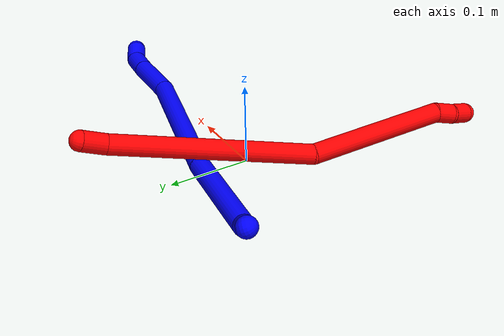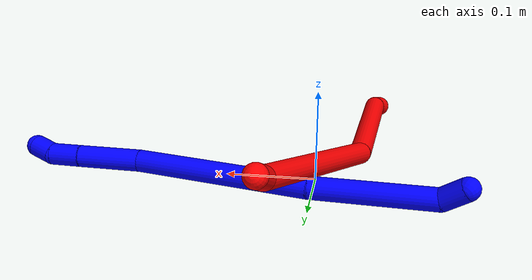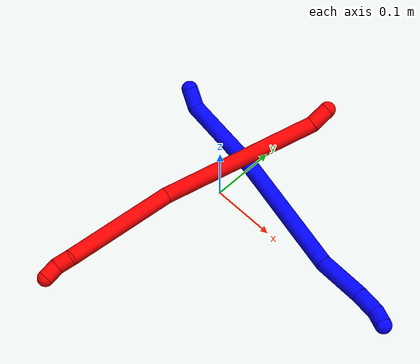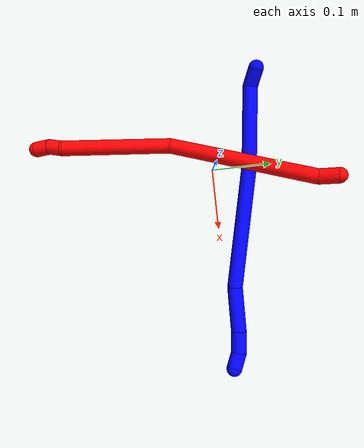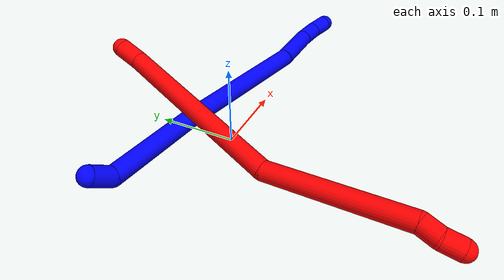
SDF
<sdf version="1.7">
 <world name="default">
  <plugin name="TubeGeneratorPlugin" filename="libtube_generator_plugin.so"/>
  <model name="photoneo_s_sensor">
   <static>1</static>
   <pose>0 0 2 1.57079 1.57079 3.14159</pose>
   <link name="link">
    <inertial><mass>0.1</mass></inertial>
    <sensor name="sensor" type="depth">
     <update_rate>30</update_rate>
     <camera>
      <horizontal_fov>1.22</horizontal_fov>
      <image><width>1920</width><height>1200</height><format>B8G8R8</format></image>
      <clip><near>0.1</near><far>4</far></clip>
      <depth_camera><output>points</output></depth_camera>
     </camera>
     <plugin name="camera_plugin" filename="libgazebo_ros_depth_camera.so">
      <baseline>0.2</baseline>
      <alwaysOn>1</alwaysOn>
      <updateRate>0.0</updateRate>
      <cameraName>camera_ir</cameraName>
      <imageTopicName>/camera/color/image_raw</imageTopicName>
      <cameraInfoTopicName>/camera/color/camera_info</cameraInfoTopicName>
      <depthImageTopicName>/camera/depth/image_raw</depthImageTopicName>
      <depthImageCameraInfoTopicName>/camera/depth/camera_info</depthImageCameraInfoTopicName>
      <pointCloudTopicName>/camera/depth/points</pointCloudTopicName>
      <frameName>fr_optical</frameName>
      <pointCloudCutoff>0.1</pointCloudCutoff>
      <pointCloudCutoffMax>2.0</pointCloudCutoffMax>
      <distortionK1>0</distortionK1>
      <distortionK2>0</distortionK2>
      <distortionK3>0</distortionK3>
      <distortionT1>0</distortionT1>
      <distortionT2>0</distortionT2>
      <CxPrime>0</CxPrime>
      <Cx>0</Cx>
      <Cy>0</Cy>
      <focalLength>0</focalLength>
      <hackBaseline>0</hackBaseline>
     </plugin>
    </sensor>
   </link>
  </model>
  <gravity>0 0 -9.8</gravity>
  <magnetic_field>6e-06 2.3e-05 -4.2e-05</magnetic_field>
  <atmosphere type="adiabatic"/>
  <physics name="default_physics" default="0" type="ode">
   <max_step_size>0.003</max_step_size>
   <real_time_factor>1</real_time_factor>
   <real_time_update_rate>1000</real_time_update_rate>
   <max_contacts>10000</max_contacts>
   <ode>
    <solver>
     <type>quick</type>
     <iters>100</iters>
     <sor>1.3</sor>
     <use_dynamic_moi_rescaling>0</use_dynamic_moi_rescaling>
    </solver>
    <constraints>
     <contact_max_correcting_vel>0</contact_max_correcting_vel>
     <contact_surface_layer>0.001</contact_surface_layer>
     <cfm>0</cfm>
     <erp>0.2</erp>
    </constraints>
   </ode>
  </physics>
  <scene><ambient>0.4 0.4 0.4 1</ambient><background>0.7 0.7 0.7 1</background><shadows>0</shadows></scene>
  <audio><device>default</device></audio>
  <spherical_coordinates>
   <surface_model>EARTH_WGS84</surface_model>
   <latitude_deg>0</latitude_deg>
   <longitude_deg>0</longitude_deg>
   <elevation>0</elevation>
   <heading_deg>0</heading_deg>
  </spherical_coordinates>
  <model name="bin">
   <static>1</static>
   <link name="bottom">
    <collision name="collision-bottom">
     <pose>0 0 -0.01 0 -0 0</pose>
     <geometry><box><size>0.8 0.6 0.02</size></box></geometry>
     <surface>
      <friction><ode><mu>100</mu><mu2>100</mu2></ode></friction>
      <contact><collide_bitmask>65535</collide_bitmask></contact>
     </surface>
    </collision>
   </link>
   <link name="west_wall">
    <collision name="collision-west_wall">
     <pose>-0.41 0 0.1 0 -0 0</pose>
     <geometry><box><size>0.02 0.6 0.2</size></box></geometry>
     <surface>
      <friction><ode><mu>100</mu><mu2>100</mu2></ode></friction>
      <contact><collide_bitmask>65535</collide_bitmask></contact>
     </surface>
    </collision>
   </link>
   <link name="east_wall">
    <collision name="collision-east_wall">
     <pose>0.41 0 0.1 0 -0 0</pose>
     <geometry><box><size>0.02 0.6 0.2</size></box></geometry>
     <surface>
      <friction><ode><mu>100</mu><mu2>100</mu2></ode></friction>
      <contact><collide_bitmask>65535</collide_bitmask></contact>
     </surface>
    </collision>
   </link>
   <link name="south_wall">
    <collision name="collision-south_wall">
     <pose>0 -0.31 0.1 0 -0 0</pose>
     <geometry><box><size>0.8 0.02 0.2</size></box></geometry>
     <surface>
      <friction><ode><mu>100</mu><mu2>100</mu2></ode></friction>
      <contact><collide_bitmask>65535</collide_bitmask></contact>
     </surface>
    </collision>
   </link>
   <link name="north_wall">
    <collision name="collision-north_wall">
     <pose>0 0.31 0.1 0 -0 0</pose>
     <geometry><box><size>0.8 0.02 0.2</size></box></geometry>
     <surface>
      <friction><ode><mu>100</mu><mu2>100</mu2></ode></friction>
      <contact><collide_bitmask>65535</collide_bitmask></contact>
     </surface>
    </collision>
   </link>
  </model>
  <model name="1">
   <static>0</static>
   <link name="1">
    <collision name="collision-cylinder-e_1_1_4">
     <pose>0.011532 -0.008003 -0.006343 2.24099 0.84605 1.49966</pose>
     <geometry><cylinder><radius>0.0125</radius><length>0.030807</length></cylinder></geometry>
     <surface>
      <friction><ode><mu>1.16</mu><mu2>1.16</mu2><slip1>0</slip1><slip2>0</slip2></ode></friction>
      <contact><ode><kp>1e+06</kp><kd>1</kd><max_vel>0</max_vel><min_depth>0.001</min_depth></ode></contact>
     </surface>
    </collision>
    <visual name="visual-cylinder-e_1_1_4">
     <pose>0.011532 -0.008003 -0.006343 2.24099 0.84605 1.49966</pose>
     <geometry><cylinder><radius>0.0125</radius><length>0.030807</length></cylinder></geometry>
     <material><ambient>0 0 1 1</ambient></material>
    </visual>
    <collision name="collision-cylinder-e_2_4_5">
     <pose>0.082574 -0.012229 -0.044033 -3.02168 1.083 -2.94264</pose>
     <geometry><cylinder><radius>0.0125</radius><length>0.134736</length></cylinder></geometry>
     <surface>
      <friction><ode><mu>1.16</mu><mu2>1.16</mu2><slip1>0</slip1><slip2>0</slip2></ode></friction>
      <contact><ode><kp>1e+06</kp><kd>1</kd><max_vel>0</max_vel><min_depth>0.001</min_depth></ode></contact>
     </surface>
    </collision>
    <visual name="visual-cylinder-e_2_4_5">
     <pose>0.082574 -0.012229 -0.044033 -3.02168 1.083 -2.94264</pose>
     <geometry><cylinder><radius>0.0125</radius><length>0.134736</length></cylinder></geometry>
     <material><ambient>0 0 1 1</ambient></material>
    </visual>
    <collision name="collision-cylinder-e_3_5_6">
     <pose>0.235721 -0.004582 -0.112212 -3.03691 1.19417 -2.98778</pose>
     <geometry><cylinder><radius>0.0125</radius><length>0.201387</length></cylinder></geometry>
     <surface>
      <friction><ode><mu>1.16</mu><mu2>1.16</mu2><slip1>0</slip1><slip2>0</slip2></ode></friction>
      <contact><ode><kp>1e+06</kp><kd>1</kd><max_vel>0</max_vel><min_depth>0.001</min_depth></ode></contact>
     </surface>
    </collision>
    <visual name="visual-cylinder-e_3_5_6">
     <pose>0.235721 -0.004582 -0.112212 -3.03691 1.19417 -2.98778</pose>
     <geometry><cylinder><radius>0.0125</radius><length>0.201387</length></cylinder></geometry>
     <material><ambient>0 0 1 1</ambient></material>
    </visual>
    <collision name="collision-cylinder-e_4_6_7">
     <pose>0.359315 0.003568 -0.167993 -2.91949 0.995495 -2.73679</pose>
     <geometry><cylinder><radius>0.0125</radius><length>0.071414</length></cylinder></geometry>
     <surface>
      <friction><ode><mu>1.16</mu><mu2>1.16</mu2><slip1>0</slip1><slip2>0</slip2></ode></friction>
      <contact><ode><kp>1e+06</kp><kd>1</kd><max_vel>0</max_vel><min_depth>0.001</min_depth></ode></contact>
     </surface>
    </collision>
    <visual name="visual-cylinder-e_4_6_7">
     <pose>0.359315 0.003568 -0.167993 -2.91949 0.995495 -2.73679</pose>
     <geometry><cylinder><radius>0.0125</radius><length>0.071414</length></cylinder></geometry>
     <material><ambient>0 0 1 1</ambient></material>
    </visual>
    <collision name="collision-cylinder-e_5_7_8">
     <pose>0.404806 0.00899 -0.19545 -3.008 1.06597 -2.91576</pose>
     <geometry><cylinder><radius>0.0125</radius><length>0.035491</length></cylinder></geometry>
     <surface>
      <friction><ode><mu>1.16</mu><mu2>1.16</mu2><slip1>0</slip1><slip2>0</slip2></ode></friction>
      <contact><ode><kp>1e+06</kp><kd>1</kd><max_vel>0</max_vel><min_depth>0.001</min_depth></ode></contact>
     </surface>
    </collision>
    <visual name="visual-cylinder-e_5_7_8">
     <pose>0.404806 0.00899 -0.19545 -3.008 1.06597 -2.91576</pose>
     <geometry><cylinder><radius>0.0125</radius><length>0.035491</length></cylinder></geometry>
     <material><ambient>0 0 1 1</ambient></material>
    </visual>
    <collision name="collision-cylinder-e_6_8_2">
     <pose>0.433237 0.011774 -0.205404 -2.2942 1.40277 -2.16071</pose>
     <geometry><cylinder><radius>0.0125</radius><length>0.026166</length></cylinder></geometry>
     <surface>
      <friction><ode><mu>1.16</mu><mu2>1.16</mu2><slip1>0</slip1><slip2>0</slip2></ode></friction>
      <contact><ode><kp>1e+06</kp><kd>1</kd><max_vel>0</max_vel><min_depth>0.001</min_depth></ode></contact>
     </surface>
    </collision>
    <visual name="visual-cylinder-e_6_8_2">
     <pose>0.433237 0.011774 -0.205404 -2.2942 1.40277 -2.16071</pose>
     <geometry><cylinder><radius>0.0125</radius><length>0.026166</length></cylinder></geometry>
     <material><ambient>0 0 1 1</ambient></material>
    </visual>
    <collision name="collision-sphere-2">
     <pose>0.446136 0.013413 -0.206853 0 -0 0</pose>
     <geometry><sphere><radius>0.0125</radius></sphere></geometry>
     <surface>
      <friction><ode><mu>1.16</mu><mu2>1.16</mu2><slip1>0</slip1><slip2>0</slip2></ode></friction>
      <contact><ode><kp>1e+06</kp><kd>1</kd><max_vel>0</max_vel><min_depth>0.001</min_depth></ode></contact>
     </surface>
    </collision>
    <visual name="visual-sphere-2">
     <pose>0.446136 0.013413 -0.206853 0 -0 0</pose>
     <geometry><sphere><radius>0.0125</radius></sphere></geometry>
     <material><ambient>0 0 1 1</ambient></material>
    </visual>
    <collision name="collision-sphere-4">
     <pose>0.023064 -0.016006 -0.012686 0 -0 0</pose>
     <geometry><sphere><radius>0.0125</radius></sphere></geometry>
     <surface>
      <friction><ode><mu>1.16</mu><mu2>1.16</mu2><slip1>0</slip1><slip2>0</slip2></ode></friction>
      <contact><ode><kp>1e+06</kp><kd>1</kd><max_vel>0</max_vel><min_depth>0.001</min_depth></ode></contact>
     </surface>
    </collision>
    <visual name="visual-sphere-4">
     <pose>0.023064 -0.016006 -0.012686 0 -0 0</pose>
     <geometry><sphere><radius>0.0125</radius></sphere></geometry>
     <material><ambient>0 0 1 1</ambient></material>
    </visual>
    <collision name="collision-sphere-1">
     <geometry><sphere><radius>0.0125</radius></sphere></geometry>
     <surface>
      <friction><ode><mu>1.16</mu><mu2>1.16</mu2><slip1>0</slip1><slip2>0</slip2></ode></friction>
      <contact><ode><kp>1e+06</kp><kd>1</kd><max_vel>0</max_vel><min_depth>0.001</min_depth></ode></contact>
     </surface>
    </collision>
    <visual name="visual-sphere-1">
     <geometry><sphere><radius>0.0125</radius></sphere></geometry>
     <material><ambient>0 0 1 1</ambient></material>
    </visual>
    <collision name="collision-sphere-8">
     <pose>0.420338 0.010134 -0.203956 0 -0 0</pose>
     <geometry><sphere><radius>0.0125</radius></sphere></geometry>
     <surface>
      <friction><ode><mu>1.16</mu><mu2>1.16</mu2><slip1>0</slip1><slip2>0</slip2></ode></friction>
      <contact><ode><kp>1e+06</kp><kd>1</kd><max_vel>0</max_vel><min_depth>0.001</min_depth></ode></contact>
     </surface>
    </collision>
    <visual name="visual-sphere-8">
     <pose>0.420338 0.010134 -0.203956 0 -0 0</pose>
     <geometry><sphere><radius>0.0125</radius></sphere></geometry>
     <material><ambient>0 0 1 1</ambient></material>
    </visual>
    <collision name="collision-sphere-5">
     <pose>0.142085 -0.008451 -0.07538 0 -0 0</pose>
     <geometry><sphere><radius>0.0125</radius></sphere></geometry>
     <surface>
      <friction><ode><mu>1.16</mu><mu2>1.16</mu2><slip1>0</slip1><slip2>0</slip2></ode></friction>
      <contact><ode><kp>1e+06</kp><kd>1</kd><max_vel>0</max_vel><min_depth>0.001</min_depth></ode></contact>
     </surface>
    </collision>
    <visual name="visual-sphere-5">
     <pose>0.142085 -0.008451 -0.07538 0 -0 0</pose>
     <geometry><sphere><radius>0.0125</radius></sphere></geometry>
     <material><ambient>0 0 1 1</ambient></material>
    </visual>
    <collision name="collision-sphere-6">
     <pose>0.329356 -0.000712 -0.149043 0 -0 0</pose>
     <geometry><sphere><radius>0.0125</radius></sphere></geometry>
     <surface>
      <friction><ode><mu>1.16</mu><mu2>1.16</mu2><slip1>0</slip1><slip2>0</slip2></ode></friction>
      <contact><ode><kp>1e+06</kp><kd>1</kd><max_vel>0</max_vel><min_depth>0.001</min_depth></ode></contact>
     </surface>
    </collision>
    <visual name="visual-sphere-6">
     <pose>0.329356 -0.000712 -0.149043 0 -0 0</pose>
     <geometry><sphere><radius>0.0125</radius></sphere></geometry>
     <material><ambient>0 0 1 1</ambient></material>
    </visual>
    <collision name="collision-sphere-7">
     <pose>0.389274 0.007847 -0.186944 0 -0 0</pose>
     <geometry><sphere><radius>0.0125</radius></sphere></geometry>
     <surface>
      <friction><ode><mu>1.16</mu><mu2>1.16</mu2><slip1>0</slip1><slip2>0</slip2></ode></friction>
      <contact><ode><kp>1e+06</kp><kd>1</kd><max_vel>0</max_vel><min_depth>0.001</min_depth></ode></contact>
     </surface>
    </collision>
    <visual name="visual-sphere-7">
     <pose>0.389274 0.007847 -0.186944 0 -0 0</pose>
     <geometry><sphere><radius>0.0125</radius></sphere></geometry>
     <material><ambient>0 0 1 1</ambient></material>
    </visual>
    <inertial>
     <pose>0.22063 -0.00387 -0.106069 0 -0 0</pose>
     <mass>0.5</mass>
     <inertia>
      <ixx>-0.000394</ixx>
      <ixy>0</ixy>
      <ixz>0</ixz>
      <iyy>0.000874</iyy>
      <iyz>0</iyz>
      <izz>-0.000919</izz>
     </inertia>
    </inertial>
   </link>
   <pose>-0.155022 0.087451 0.031453 1.16379 -0.128357 -0.59151</pose>
  </model>
  <model name="2">
   <static>0</static>
   <link name="2">
    <collision name="collision-cylinder-e_1_1_4">
     <pose>-0.00024 5e-06 0.015564 -0.000325 -0.0154 3e-06</pose>
     <geometry><cylinder><radius>0.0125</radius><length>0.031131</length></cylinder></geometry>
     <surface>
      <friction><ode><mu>1.16</mu><mu2>1.16</mu2><slip1>0</slip1><slip2>0</slip2></ode></friction>
      <contact><ode><kp>1e+06</kp><kd>1</kd><max_vel>0</max_vel><min_depth>0.001</min_depth></ode></contact>
     </surface>
    </collision>
    <visual name="visual-cylinder-e_1_1_4">
     <pose>-0.00024 5e-06 0.015564 -0.000325 -0.0154 3e-06</pose>
     <geometry><cylinder><radius>0.0125</radius><length>0.031131</length></cylinder></geometry>
     <material><ambient>1 0 0 1</ambient></material>
    </visual>
    <collision name="collision-cylinder-e_2_4_5">
     <pose>0.003483 -0.038413 0.147021 0.320136 0.03244 0.005238</pose>
     <geometry><cylinder><radius>0.0125</radius><length>0.244321</length></cylinder></geometry>
     <surface>
      <friction><ode><mu>1.16</mu><mu2>1.16</mu2><slip1>0</slip1><slip2>0</slip2></ode></friction>
      <contact><ode><kp>1e+06</kp><kd>1</kd><max_vel>0</max_vel><min_depth>0.001</min_depth></ode></contact>
     </surface>
    </collision>
    <visual name="visual-cylinder-e_2_4_5">
     <pose>0.003483 -0.038413 0.147021 0.320136 0.03244 0.005238</pose>
     <geometry><cylinder><radius>0.0125</radius><length>0.244321</length></cylinder></geometry>
     <material><ambient>1 0 0 1</ambient></material>
    </visual>
    <collision name="collision-cylinder-e_3_5_6">
     <pose>-0.021834 -0.104818 0.341854 0.340647 -0.336311 -0.058377</pose>
     <geometry><cylinder><radius>0.0125</radius><length>0.177447</length></cylinder></geometry>
     <surface>
      <friction><ode><mu>1.16</mu><mu2>1.16</mu2><slip1>0</slip1><slip2>0</slip2></ode></friction>
      <contact><ode><kp>1e+06</kp><kd>1</kd><max_vel>0</max_vel><min_depth>0.001</min_depth></ode></contact>
     </surface>
    </collision>
    <visual name="visual-cylinder-e_3_5_6">
     <pose>-0.021834 -0.104818 0.341854 0.340647 -0.336311 -0.058377</pose>
     <geometry><cylinder><radius>0.0125</radius><length>0.177447</length></cylinder></geometry>
     <material><ambient>1 0 0 1</ambient></material>
    </visual>
    <collision name="collision-cylinder-e_4_6_7">
     <pose>-0.051085 -0.135493 0.432206 0.231795 0.002422 0.000282</pose>
     <geometry><cylinder><radius>0.0125</radius><length>0.02345</length></cylinder></geometry>
     <surface>
      <friction><ode><mu>1.16</mu><mu2>1.16</mu2><slip1>0</slip1><slip2>0</slip2></ode></friction>
      <contact><ode><kp>1e+06</kp><kd>1</kd><max_vel>0</max_vel><min_depth>0.001</min_depth></ode></contact>
     </surface>
    </collision>
    <visual name="visual-cylinder-e_4_6_7">
     <pose>-0.051085 -0.135493 0.432206 0.231795 0.002422 0.000282</pose>
     <geometry><cylinder><radius>0.0125</radius><length>0.02345</length></cylinder></geometry>
     <material><ambient>1 0 0 1</ambient></material>
    </visual>
    <collision name="collision-cylinder-e_5_7_2">
     <pose>-0.053569 -0.138476 0.455169 0.025013 -0.214026 -0.002687</pose>
     <geometry><cylinder><radius>0.0125</radius><length>0.023651</length></cylinder></geometry>
     <surface>
      <friction><ode><mu>1.16</mu><mu2>1.16</mu2><slip1>0</slip1><slip2>0</slip2></ode></friction>
      <contact><ode><kp>1e+06</kp><kd>1</kd><max_vel>0</max_vel><min_depth>0.001</min_depth></ode></contact>
     </surface>
    </collision>
    <visual name="visual-cylinder-e_5_7_2">
     <pose>-0.053569 -0.138476 0.455169 0.025013 -0.214026 -0.002687</pose>
     <geometry><cylinder><radius>0.0125</radius><length>0.023651</length></cylinder></geometry>
     <material><ambient>1 0 0 1</ambient></material>
    </visual>
    <collision name="collision-sphere-2">
     <pose>-0.05608 -0.138765 0.466721 0 -0 0</pose>
     <geometry><sphere><radius>0.0125</radius></sphere></geometry>
     <surface>
      <friction><ode><mu>1.16</mu><mu2>1.16</mu2><slip1>0</slip1><slip2>0</slip2></ode></friction>
      <contact><ode><kp>1e+06</kp><kd>1</kd><max_vel>0</max_vel><min_depth>0.001</min_depth></ode></contact>
     </surface>
    </collision>
    <visual name="visual-sphere-2">
     <pose>-0.05608 -0.138765 0.466721 0 -0 0</pose>
     <geometry><sphere><radius>0.0125</radius></sphere></geometry>
     <material><ambient>1 0 0 1</ambient></material>
    </visual>
    <collision name="collision-sphere-7">
     <pose>-0.051057 -0.138187 0.443617 0 -0 0</pose>
     <geometry><sphere><radius>0.0125</radius></sphere></geometry>
     <surface>
      <friction><ode><mu>1.16</mu><mu2>1.16</mu2><slip1>0</slip1><slip2>0</slip2></ode></friction>
      <contact><ode><kp>1e+06</kp><kd>1</kd><max_vel>0</max_vel><min_depth>0.001</min_depth></ode></contact>
     </surface>
    </collision>
    <visual name="visual-sphere-7">
     <pose>-0.051057 -0.138187 0.443617 0 -0 0</pose>
     <geometry><sphere><radius>0.0125</radius></sphere></geometry>
     <material><ambient>1 0 0 1</ambient></material>
    </visual>
    <collision name="collision-sphere-6">
     <pose>-0.051114 -0.1328 0.420795 0 -0 0</pose>
     <geometry><sphere><radius>0.0125</radius></sphere></geometry>
     <surface>
      <friction><ode><mu>1.16</mu><mu2>1.16</mu2><slip1>0</slip1><slip2>0</slip2></ode></friction>
      <contact><ode><kp>1e+06</kp><kd>1</kd><max_vel>0</max_vel><min_depth>0.001</min_depth></ode></contact>
     </surface>
    </collision>
    <visual name="visual-sphere-6">
     <pose>-0.051114 -0.1328 0.420795 0 -0 0</pose>
     <geometry><sphere><radius>0.0125</radius></sphere></geometry>
     <material><ambient>1 0 0 1</ambient></material>
    </visual>
    <collision name="collision-sphere-5">
     <pose>0.007445 -0.076836 0.262914 0 -0 0</pose>
     <geometry><sphere><radius>0.0125</radius></sphere></geometry>
     <surface>
      <friction><ode><mu>1.16</mu><mu2>1.16</mu2><slip1>0</slip1><slip2>0</slip2></ode></friction>
      <contact><ode><kp>1e+06</kp><kd>1</kd><max_vel>0</max_vel><min_depth>0.001</min_depth></ode></contact>
     </surface>
    </collision>
    <visual name="visual-sphere-5">
     <pose>0.007445 -0.076836 0.262914 0 -0 0</pose>
     <geometry><sphere><radius>0.0125</radius></sphere></geometry>
     <material><ambient>1 0 0 1</ambient></material>
    </visual>
    <collision name="collision-sphere-1">
     <geometry><sphere><radius>0.0125</radius></sphere></geometry>
     <surface>
      <friction><ode><mu>1.16</mu><mu2>1.16</mu2><slip1>0</slip1><slip2>0</slip2></ode></friction>
      <contact><ode><kp>1e+06</kp><kd>1</kd><max_vel>0</max_vel><min_depth>0.001</min_depth></ode></contact>
     </surface>
    </collision>
    <visual name="visual-sphere-1">
     <geometry><sphere><radius>0.0125</radius></sphere></geometry>
     <material><ambient>1 0 0 1</ambient></material>
    </visual>
    <collision name="collision-sphere-4">
     <pose>-0.000479 1e-05 0.031128 0 -0 0</pose>
     <geometry><sphere><radius>0.0125</radius></sphere></geometry>
     <surface>
      <friction><ode><mu>1.16</mu><mu2>1.16</mu2><slip1>0</slip1><slip2>0</slip2></ode></friction>
      <contact><ode><kp>1e+06</kp><kd>1</kd><max_vel>0</max_vel><min_depth>0.001</min_depth></ode></contact>
     </surface>
    </collision>
    <visual name="visual-sphere-4">
     <pose>-0.000479 1e-05 0.031128 0 -0 0</pose>
     <geometry><sphere><radius>0.0125</radius></sphere></geometry>
     <material><ambient>1 0 0 1</ambient></material>
    </visual>
    <inertial>
     <pose>-0.010992 -0.068874 0.235932 0 -0 0</pose>
     <mass>0.5</mass>
     <inertia>
      <ixx>0.001653</ixx>
      <ixy>0</ixy>
      <ixz>0</ixz>
      <iyy>0.001588</iyy>
      <iyz>0</iyz>
      <izz>0.000688</izz>
     </inertia>
    </inertial>
   </link>
   <pose>0.038529 0.188179 0.068064 -2.09306 0.653985 2.6939</pose>
  </model>
 </world>
</sdf>
